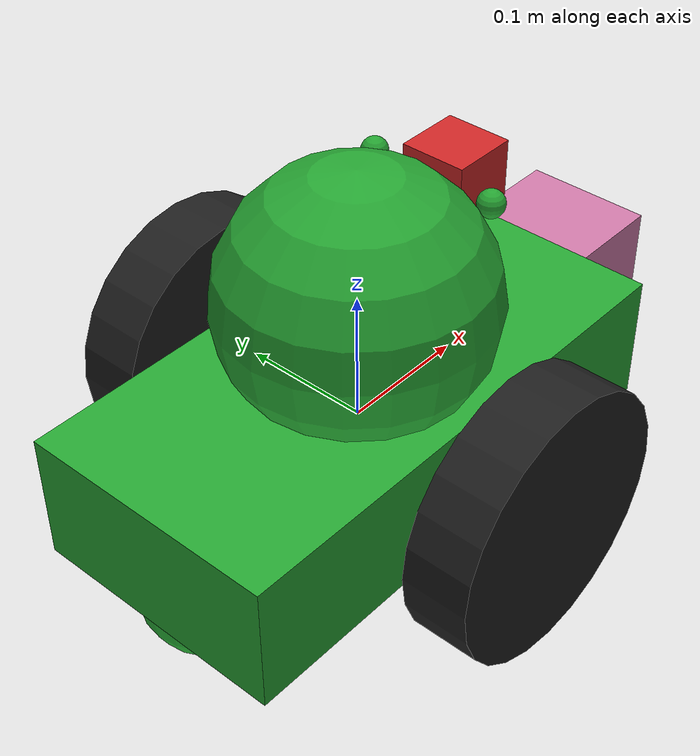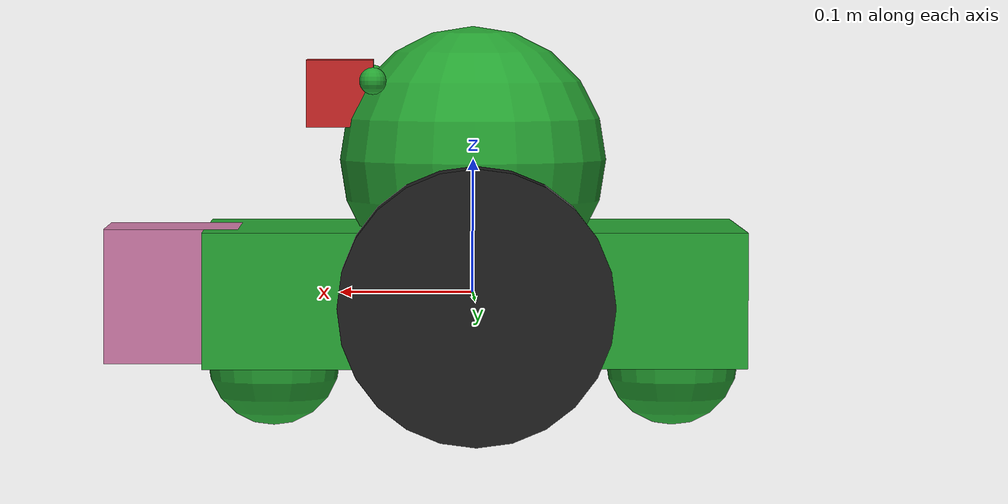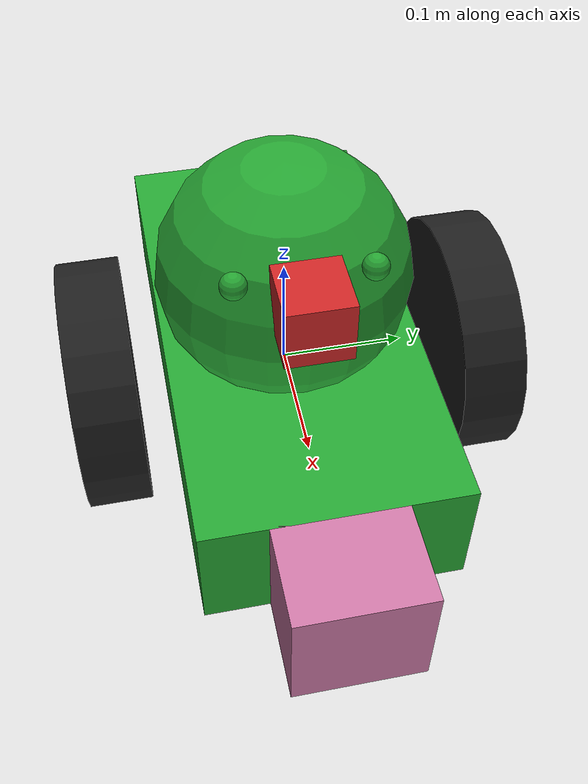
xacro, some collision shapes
<?xml version='1.0'?>

<robot name="my_robot" xmlns:xacro="http://www.ros.org/wiki/xacro">

  <xacro:include filename="$(find my_robot)/urdf/my_robot.gazebo" />

  <link name="robot_footprint"></link>

  <joint name="robot_footprint_joint" type="fixed">
    <origin xyz="0 0 0" rpy="0 0 0" />
    <parent link="robot_footprint"/>
    <child link="chassis" />
  </joint>

  <link name='chassis'>
    <pose>0 0 0.1 0 0 0</pose>

    <inertial>
      <mass value="5.0"/>
      <origin xyz="0.0 0 0" rpy=" 0 0 0"/>
      <inertia
          ixx="0.1" ixy="0" ixz="0"
          iyy="0.1" iyz="0"
          izz="0.1"
      />
    </inertial>

    <collision name='collision'>
      <origin xyz="0 0 0" rpy=" 0 0 0"/>
      <geometry>
        <box size=".4 .2 .1"/>
      </geometry>
    </collision>

    <visual name='chassis_visual'>
      <origin xyz="0 0 0" rpy=" 0 0 0"/>
      <geometry>
        <box size=".4 .2 .1"/>
      </geometry>
    </visual>

    <collision name='back_caster_collision'>
      <origin xyz="-0.15 0 -0.05" rpy=" 0 0 0"/>
      <geometry>
        <sphere radius="0.0499"/>
      </geometry>
    </collision>

    <visual name='back_caster_visual'>
      <origin xyz="-0.15 0 -0.05" rpy=" 0 0 0"/>
      <geometry>
        <sphere radius="0.05"/>
      </geometry>
    </visual>

    <collision name='front_caster_collision'>
      <origin xyz="0.15 0 -0.05" rpy=" 0 0 0"/>
      <geometry>
        <sphere radius="0.0499"/>
      </geometry>
    </collision>

    <visual name='front_caster_visual'>
      <origin xyz="0.15 0 -0.05" rpy=" 0 0 0"/>
      <geometry>
        <sphere radius="0.05"/>
      </geometry>
    </visual>

    <collision name='head_collision'>
      <origin xyz="0 0 0.1" rpy=" 0 0 0"/>
      <geometry>
        <sphere radius="0.1"/>
      </geometry>
    </collision>

    <visual name='head_visual'>
      <origin xyz="0 0 0.1" rpy=" 0 0 0"/>
      <geometry>
        <sphere radius="0.1"/>
      </geometry>
    </visual>

    <collision name='left_eye_collision'>
      <origin xyz="0.075 0.05 0.16" rpy=" 0 0 0"/>
      <geometry>
        <sphere radius="0.01"/>
      </geometry>
    </collision>

    <visual name='left_eye_visual'>
      <origin xyz="0.075 0.05 0.16" rpy=" 0 0 0"/>
      <geometry>
        <sphere radius="0.01"/>
      </geometry>
    </visual>

    <collision name='right_eye_collision'>
      <origin xyz="0.075 -0.05 016" rpy=" 0 0 0"/>
      <geometry>
        <sphere radius="0.01"/>
      </geometry>
    </collision>

    <visual name='right_eye_visual'>
      <origin xyz="0.075 -0.05 0.16" rpy=" 0 0 0"/>
      <geometry>
        <sphere radius="0.01"/>
      </geometry>
    </visual>

  </link>

  <link name="left_wheel">
    <inertial>
      <origin xyz="0 0 0" rpy="0 0 0"/>
      <mass value="0.5"/>
      <inertia ixx="0.1"  ixy="0"  ixz="0"
               iyy="0.1" iyz="0"
               izz="0.1" />
    </inertial>

    <visual>
      <origin xyz="0 0 0" rpy="0 1.5707 1.5707" />
      <geometry>
        <cylinder radius="0.1" length="0.05"/>
      </geometry>
    </visual>

    <collision>
      <origin xyz="0 0 0" rpy="0 1.5707 1.5707"/>
      <geometry>
         <cylinder radius="0.1" length="0.05"/>
      </geometry>
    </collision>
   </link>

  <joint type="continuous" name="left_wheel_hinge">
    <origin xyz="0 0.15 0" rpy="0 0 0"/>
    <child link="left_wheel"/>
    <parent link="chassis"/>
    <axis xyz="0 1 0" rpy="0 0 0"/>
    <limit effort="10000" velocity="1000"/>
    <dynamics damping="1.0" friction="1.0"/>
  </joint>

<link name="right_wheel">
    <inertial>
      <origin xyz="0 0 0" rpy="0 0 0"/>
      <mass value="0.5"/>
      <inertia ixx="0.1"  ixy="0"  ixz="0"
               iyy="0.1" iyz="0"
               izz="0.1" />
    </inertial>

    <visual>
      <origin xyz="0 0 0" rpy="0 1.5707 1.5707" />
      <geometry>
        <cylinder radius="0.1" length="0.05"/>
      </geometry>
    </visual>

    <collision>
      <origin xyz="0 0 0" rpy="0 1.5707 1.5707"/>
      <geometry>
         <cylinder radius="0.1" length="0.05"/>
      </geometry>
    </collision>
   </link>

  <joint type="continuous" name="right_wheel_hinge">
    <origin xyz="0 -0.15 0" rpy="0 0 0"/>
    <child link="right_wheel"/>
    <parent link="chassis"/>
    <axis xyz="0 1 0" rpy="0 0 0"/>
    <limit effort="10000" velocity="1000"/>
    <dynamics damping="1.0" friction="1.0"/>
  </joint>

  <link name='camera'>
    <visual>
      <origin xyz="0 0 0" rpy=" 0 0 0"/>
      <geometry>
        <box size="0.05 0.05 0.05"/>
      </geometry>
    </visual>

    <collision>
      <origin xyz="0 0 0" rpy=" 0 0 0"/>
      <geometry>
        <box size="0.05 0.05 0.05"/>
      </geometry>
    </collision>

    <inertial>
      <mass value="0.1"/>
      <origin xyz="0.05 0.05 0.05" rpy=" 0 0 0"/>
      <inertia
          ixx="1e-6" ixy="0" ixz="0"
          iyy="1e-6" iyz="0"
          izz="1e-6"
      />
    </inertial>
  </link>

  <joint type="fixed" name="camera_joint">
    <origin xyz="0.1 0 0.15" rpy="0 0 0"/>
    <child link="camera"/>
    <parent link="chassis"/>
    <axis xyz="0 1 0" rpy="0 0 0"/>
  </joint>

  <link name="camera_link_optical">
  </link>

  <joint name="camera_optical_joint" type="fixed">
    <origin xyz="0 0 0" rpy="-1.5707 0 -1.5707"/>
    <parent link="camera"/>
    <child link="camera_link_optical"/>
  </joint>

  <link name="hokuyo">
    <pose>
      <origin xyz="0 0 0" rpy=" 0 0 0"/>
    </pose>
    <visual>
      <origin xyz="0 0 0" rpy=" 0 0 0"/>
      <geometry>
        <mesh filename="package://my_robot/meshes/hokuyo.dae"/>
      </geometry>
    </visual>

    <collision>
      <origin xyz="0 0 0" rpy=" 0 0 0"/>
      <geometry>
        <box size="0.1 0.1 0.1"/>
      </geometry>
    </collision>

    <inertial>
      <mass value="1e-5"/>
      <origin xyz="0.05 0.05 0.05" rpy=" 0 0 0"/>
      <inertia
          ixx="1e-6" ixy="0" ixz="0"
          iyy="1e-6" iyz="0"
          izz="1e-6"
      />
    </inertial>
  </link>

  <joint type="fixed" name="hokuyo_joint">
    <origin xyz="0.225 0 0" rpy="0 0 0"/>
    <child link="hokuyo"/>
    <parent link="chassis"/>
    <axis xyz="0 1 0" rpy="0 0 0"/>
  </joint>

  <gazebo reference="chassis">
    <material>Gazebo/Green</material>
  </gazebo>

  <gazebo reference="left_wheel">
    <material>Gazebo/Black</material>
  </gazebo>

  <gazebo reference="right_wheel">
    <material>Gazebo/Black</material>
  </gazebo>

  <gazebo reference="camera">
    <material>Gazebo/Red</material>
  </gazebo>

</robot>
